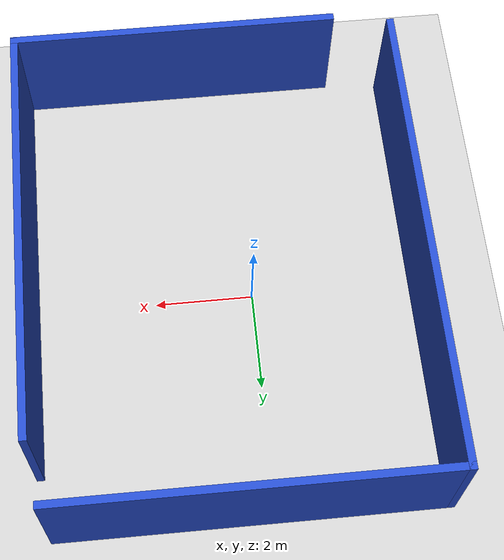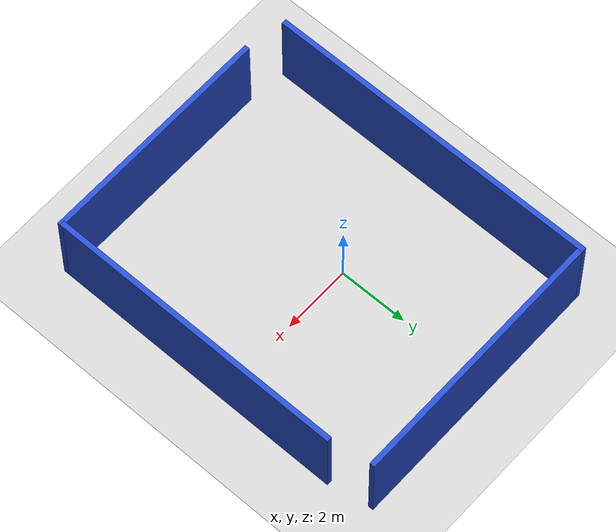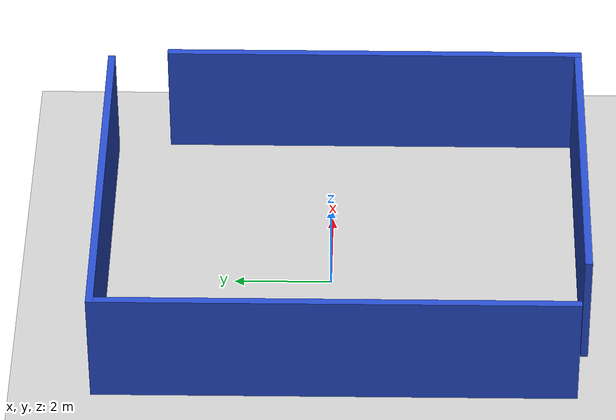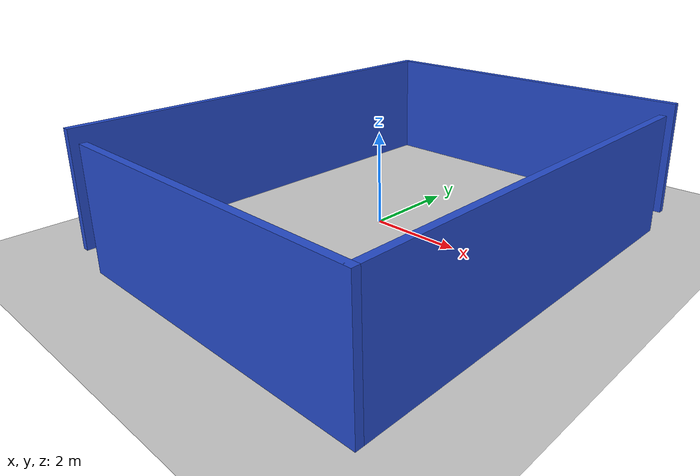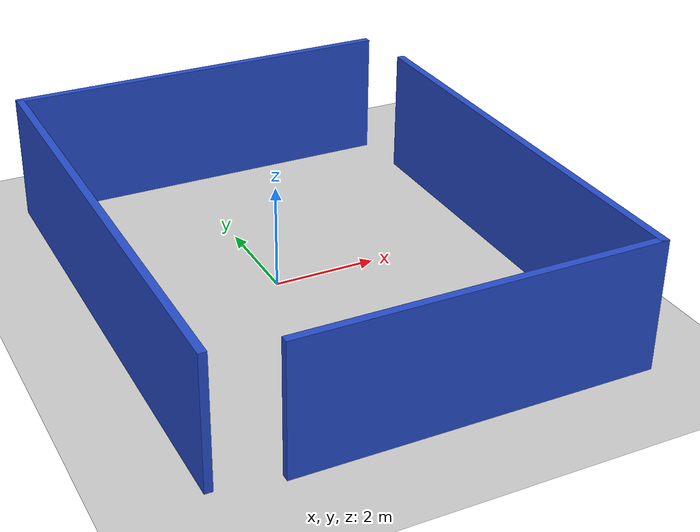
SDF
<sdf version="1.7">
 <world name="default">
  <light name="sun" type="directional">
   <pose>0 0 10 0 -0 0</pose>
   <diffuse>0.8 0.8 0.8 1</diffuse>
   <specular>0.2 0.2 0.2 1</specular>
   <attenuation>
    <range>1000</range>
    <constant>0.9</constant>
    <linear>0.01</linear>
    <quadratic>0.001</quadratic>
   </attenuation>
   <direction>-0.5 0.1 -0.9</direction>
   <spot><inner_angle>0</inner_angle><outer_angle>0</outer_angle><falloff>0</falloff></spot>
  </light>
  <model name="ground_plane">
   <static>1</static>
   <link name="link">
    <collision name="collision">
     <geometry><plane><normal>0 0 1</normal><size>100 100</size></plane></geometry>
     <surface><friction><ode><mu>100</mu><mu2>50</mu2></ode></friction></surface>
    </collision>
    <visual name="visual">
     <cast_shadows>0</cast_shadows>
     <geometry><plane><normal>0 0 1</normal><size>100 100</size></plane></geometry>
     <material>
      <script><uri>file://media/materials/scripts/gazebo.material</uri><name>Gazebo/Grey</name></script>
     </material>
    </visual>
   </link>
  </model>
  <gravity>0 0 -9.8</gravity>
  <magnetic_field>6e-06 2.3e-05 -4.2e-05</magnetic_field>
  <atmosphere type="adiabatic"/>
  <physics type="ode">
   <max_step_size>0.001</max_step_size>
   <real_time_factor>1</real_time_factor>
   <real_time_update_rate>1000</real_time_update_rate>
  </physics>
  <scene><ambient>0.4 0.4 0.4 1</ambient><background>0.7 0.7 0.7 1</background><shadows>0</shadows></scene>
  <spherical_coordinates>
   <surface_model>EARTH_WGS84</surface_model>
   <latitude_deg>0</latitude_deg>
   <longitude_deg>0</longitude_deg>
   <elevation>0</elevation>
   <heading_deg>0</heading_deg>
  </spherical_coordinates>
  <model name="maze_2">
   <pose>0.559102 -0.217452 0 0 -0 0</pose>
   <link name="Wall_12">
    <collision name="Wall_12_Collision">
     <geometry><box><size>8.75 0.15 2.5</size></box></geometry>
     <pose>0 0 1.25 0 -0 0</pose>
    </collision>
    <visual name="Wall_12_Visual">
     <pose>0 0 1.25 0 -0 0</pose>
     <geometry><box><size>8.75 0.15 2.5</size></box></geometry>
     <material>
      <script><uri>file://media/materials/scripts/gazebo.material</uri><name>Gazebo/Blue</name></script>
      <ambient>0.996078 0.47451 0.0196078 1</ambient>
     </material>
     <meta><layer>0</layer></meta>
    </visual>
    <pose>3.92259 -0.630829 0 0 -0 -1.5708</pose>
   </link>
   <link name="Wall_13">
    <collision name="Wall_13_Collision">
     <geometry><box><size>6.75 0.15 2.5</size></box></geometry>
     <pose>0 0 1.25 0 -0 0</pose>
    </collision>
    <visual name="Wall_13_Visual">
     <pose>0 0 1.25 0 -0 0</pose>
     <geometry><box><size>6.75 0.15 2.5</size></box></geometry>
     <material>
      <script><uri>file://media/materials/scripts/gazebo.material</uri><name>Gazebo/Blue</name></script>
      <ambient>0.996078 0.47451 0.0196078 1</ambient>
     </material>
     <meta><layer>0</layer></meta>
    </visual>
    <pose>0.622594 -4.93083 0 0 -0 3.14159</pose>
   </link>
   <link name="Wall_3">
    <collision name="Wall_3_Collision">
     <geometry><box><size>9.75 0.15 2.5</size></box></geometry>
     <pose>0 0 1.25 0 -0 0</pose>
    </collision>
    <visual name="Wall_3_Visual">
     <pose>0 0 1.25 0 -0 0</pose>
     <geometry><box><size>9.75 0.15 2.5</size></box></geometry>
     <material>
      <script><uri>file://media/materials/scripts/gazebo.material</uri><name>Gazebo/Blue</name></script>
      <ambient>0.996078 0.47451 0.0196078 1</ambient>
     </material>
     <meta><layer>0</layer></meta>
    </visual>
    <pose>-3.91589 0.119305 0 0 -0 1.5708</pose>
   </link>
   <link name="Wall_8">
    <collision name="Wall_8_Collision">
     <geometry><box><size>7.75 0.15 2.5</size></box></geometry>
     <pose>0 0 1.25 0 -0 0</pose>
    </collision>
    <visual name="Wall_8_Visual">
     <pose>0 0 1.25 0 -0 0</pose>
     <geometry><box><size>7.75 0.15 2.5</size></box></geometry>
     <material>
      <script><uri>file://media/materials/scripts/gazebo.material</uri><name>Gazebo/Blue</name></script>
      <ambient>0.996078 0.47451 0.0196078 1</ambient>
     </material>
     <meta><layer>0</layer></meta>
    </visual>
    <pose>-0.115891 4.9193 0 0 -0 0</pose>
   </link>
   <static>1</static>
  </model>
  <audio><device>default</device></audio>
 </world>
</sdf>
